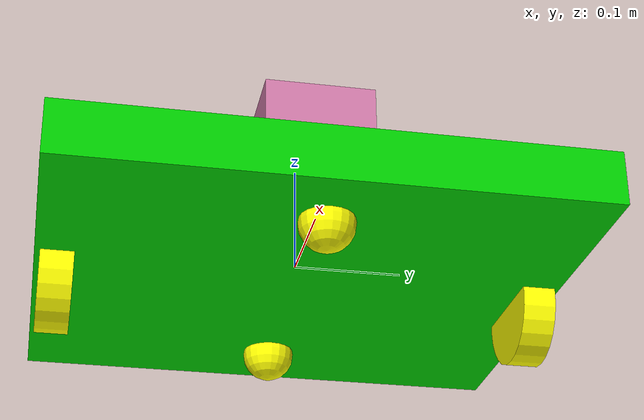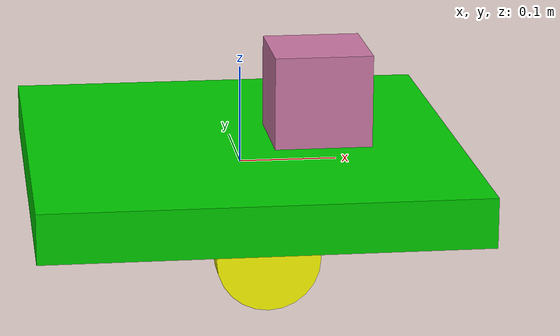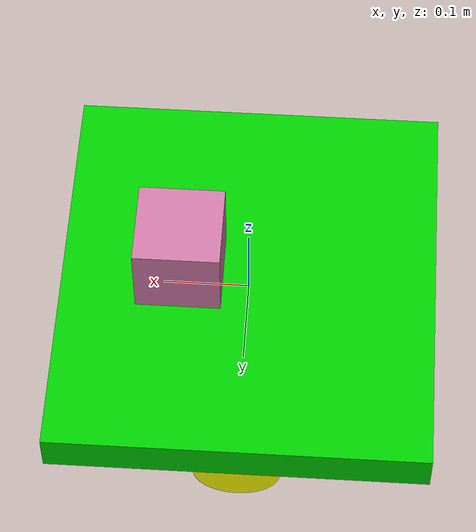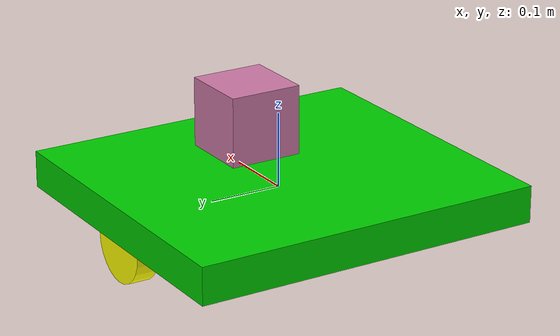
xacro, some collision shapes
<?xml version="1.0"?>
<robot xmlns:xacro="http://www.ros.org/wiki/xacro" name="my_diffbot">

    <xacro:include filename="$(find robot_model)/urdf/robot_core.xacro"/>

    <xacro:include filename="$(find robot_model)/urdf/material_colors.xacro"/>

    <xacro:include filename="$(find robot_model)/urdf/lidar.xacro"/>

</robot>

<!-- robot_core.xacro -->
<robot xmlns:xacro="http://www.ros.org/wiki/xacro" name="my_diffbot">

<!-- Here we define the model parameters -->
    <!-- Geometry -->
    <xacro:property name="base_link_width" value="0.44"/>
    <xacro:property name="base_link_length" value="0.48"/>
    <xacro:property name="base_link_height" value="0.05"/>

    <xacro:property name="wheel_link_length" value="0.03"/>
    <xacro:property name="wheel_link_radius" value="0.05"/>

    <xacro:property name="caster_link_radius" value="0.025"/>

    <!-- Pi Constant -->
    <xacro:property name="PI" value="3.14159265"/>

    <!-- Material density -->

    <!-- Mass -->
    <xacro:property name="base_link_mass" value="10.0"/>
    <xacro:property name="wheel_link_mass" value="0.3"/>
    <xacro:property name="caster_link_mass" value="0.3"/>

<!-- Here we define the model -->
    <!-- DUMMY_LINK is used for Gazebo => Gazebo will complain if missing -->
    <!-- FOR REAL ROBOT, WE DONT NEED "DUMMYLINK" -->

    <!-- Define base_footprint link -->
    <link name="base_footprint">
        <!-- Define visual for base_footprint (optional) -->
        <visual>
            <geometry>
                <!-- You can use any geometry you prefer, simply use a small sphere for visualization -->
                <sphere radius="0.01"/>
            </geometry>
            <origin xyz="0.0 0.0 0.0" rpy="0.0 0.0 0.0"/>
            <material name="blue"/>
        </visual>
        <collision>
            <geometry>
                <!-- Match the visual geometry for collision purposes -->
                <sphere radius="0.01"/>
            </geometry>
            <origin xyz="0.0 0.0 0.0" rpy="0.0 0.0 0.0"/>
        </collision>
    </link>

    <!-- Define a fixed joint connecting base_footprint to base_link -->
    <joint name="base_footprint_joint" type="fixed">
        <parent link="base_footprint"/>
        <child link="base_link"/>
        <origin xyz="0.0 0.0 0.0" rpy="0.0 0.0 0.0"/>
    </joint>

    <!-- Define base_link -->
    <!--Actual body/chassis of the robot-->
    <link name="base_link">
        <visual>
            <geometry>
                <box size="${base_link_width} ${base_link_length} ${base_link_height}"/>
            </geometry>
            <origin xyz="0.0 0.0 0.0" rpy="0.0 0.0 0.0"/>
            <material name="green"/>
        </visual>

        <!-- This is the main factors to simulate the robot's collision (va chamj) -->
        <collision>
            <geometry>
                <box size="${base_link_width} ${base_link_length} ${base_link_height}"/>
            </geometry>
            <origin xyz="0.0 0.0 0.0" rpy="0.0 0.0 0.0"/>
        </collision>

        <inertial>
            <!-- mass in kg -->
            <mass value="${base_link_mass}"/>
            <origin xyz="0.0 0.0 0.0"/>
            <!-- Moment of inertia tensor (Momen quans tinhs)-->
            <inertia ixx="0.1" ixy="0.0" ixz="0.0" iyy="0.1" iyz="0.0" izz="0.1"/>
        </inertial>
    </link>

    <!-- Define left_wheel_joint -->
    <joint name="left_wheel_joint" type="continuous">
        <parent link="base_link"/>
        <child link="left_wheel_link"/>
        <origin xyz="0.0 0.22 -0.03" rpy="-1.57 0.0 0.0"/>
        <axis xyz="0.0 0.0 1.0"/>
    </joint>

    <!-- Define left_wheel_link -->
    <link name="left_wheel_link">
        <visual>
            <geometry>
                <cylinder radius="${wheel_link_radius}" length="${wheel_link_length}"/>
            </geometry>
            <origin xyz="0.0 0.0 0.0" rpy="0 0.0 0.0"/>
            <material name="yellow"/>
        </visual>

        <collision>
            <geometry>
                <cylinder radius="${wheel_link_radius}" length="${wheel_link_length}"/>
            </geometry>
            <origin xyz="0.0 0.0 0.0" rpy="0 0.0 0.0"/>
        </collision>

        <inertial>
            <mass value="${wheel_link_mass}"/>
            <origin xyz="0.0 0.0 0.0"/>
            <inertia ixx="0.1" ixy="0.0" ixz="0.0" iyy="0.1" iyz="0.0" izz="0.1"/>
        </inertial>
    </link>

    <!-- Define right_wheel_joint -->
    <joint name="right_wheel_joint" type="continuous">
        <parent link="base_link"/>
        <child link="right_wheel_link"/>
        <origin xyz="0.0 -0.22 -0.03" rpy="1.57 0.0 0.0"/>
        <axis xyz="0.0 0.0 -1.0"/>
    </joint>

    <!-- Define right_wheel_link -->
    <link name="right_wheel_link">
        <visual>
            <geometry>
                <cylinder radius="${wheel_link_radius}" length="${wheel_link_length}"/>
            </geometry>
            <origin xyz="0.0 0.0 0.0" rpy="0 0.0 0.0"/>
            <material name="yellow"/>
        </visual>

        <collision>
            <geometry>
                <cylinder radius="${wheel_link_radius}" length="${wheel_link_length}"/>
            </geometry>
            <origin xyz="0.0 0.0 0.0" rpy="0 0.0 0.0"/>
        </collision>

        <inertial>
            <mass value="${wheel_link_mass}"/>
            <origin xyz="0.0 0.0 0.0"/>
            <inertia ixx="0.1" ixy="0.0" ixz="0.0" iyy="0.1" iyz="0.0" izz="0.1"/>
        </inertial>
    </link>

    <!-- Define caster_joint_1 -->
    <joint name="caster_joint_1" type="fixed">
        <parent link="base_link"/>
        <child link="caster_link_1"/>
        <origin xyz="0.15 0.0 -0.03"/>
    </joint>

    <!-- Define caster_link_1 -->
    <link name="caster_link_1">
        <visual>
            <geometry>
                <sphere radius="${caster_link_radius}"/>
            </geometry>
            <origin xyz="0.0 0.0 0.0"/>
            <material name="yellow"/>
        </visual>

        <collision>
            <geometry>
                <sphere radius="${caster_link_radius}"/>
            </geometry>
            <origin xyz="0.0 0.0 0.0"/>
        </collision>

        <inertial>
            <mass value="${caster_link_mass}"/>
            <origin xyz="0.0 0.0 0.0"/>
            <inertia ixx="1e-6" ixy="0" ixz="0" iyy="1e-6" iyz="0" izz="1e-6"/>
        </inertial>
    </link>

    <!-- Define caster_joint_2 -->
    <joint name="caster_joint_2" type="fixed">
        <parent link="base_link"/>
        <child link="caster_link_2"/>
        <origin xyz="-0.15 0.0 -0.03"/>
    </joint>

    <!-- Define caster_link_2 -->
    <link name="caster_link_2">
        <visual>
            <geometry>
                <sphere radius="${caster_link_radius}"/>
            </geometry>
            <origin xyz="0.0 0.0 0.0"/>
            <material name="yellow"/>
        </visual>

        <collision>
            <geometry>
                <sphere radius="${caster_link_radius}"/>
            </geometry>
            <origin xyz="0.0 0.0 0.0"/>
        </collision>

        <inertial>
            <mass value="${caster_link_mass}"/>
            <origin xyz="0.0 0.0 0.0"/>
            <inertia ixx="1e-6" ixy="0" ixz="0" iyy="1e-6" iyz="0" izz="1e-6"/>
        </inertial>
    </link>

    <!-- LIDAR -->
    <joint name="lidar_joint" type="fixed">
        <parent link="base_link"/>
        <child link="laser"/>
        <axis xyz="0 1 0" />
        <origin xyz="0.08 0 0.07" rpy="0 0 0"/>
    </joint>

    <link name="laser">
        <visual>
            <geometry>
                <mesh filename="package://robot_model/meshes/Hieuneee.dae"/>
            </geometry>
        </visual>

        <collision>
            <geometry>
                <box size="0.1 0.1 0.1"/>
            </geometry>
            <origin xyz="0 0 0" rpy="0 0 0"/>
        </collision>

        <inertial>
            <mass value="1e-5" />
            <origin xyz="0 0 0" rpy="0 0 0"/>
            <inertia ixx="1e-6" ixy="0" ixz="0" iyy="1e-6" iyz="0" izz="1e-6" />
        </inertial>
    </link>

<!-- USE FOR CONTROLLING ROBOT -->
    <!-- Transmission -->
    <transmission name="trans_left">
        <type>transmission_interface/SimpleTransmission</type>
        <joint name="left_wheel_joint">
            <hardwareInterface>hardware_interface/VelocityJointInterface</hardwareInterface>
        </joint>
        <actuator name="motor_left">
            <hardwareInterface>hardware_interface/VelocityJointInterface</hardwareInterface>
            <mechanicalReduction>1</mechanicalReduction>
        </actuator>
    </transmission>

    <transmission name="trans_right">
        <type>transmission_interface/SimpleTransmission</type>
        <joint name="right_wheel_joint">
            <hardwareInterface>hardware_interface/VelocityJointInterface</hardwareInterface>
        </joint>
        <actuator name="motor_right">
            <hardwareInterface>hardware_interface/VelocityJointInterface</hardwareInterface>
            <mechanicalReduction>1</mechanicalReduction>
        </actuator>
    </transmission>

</robot>

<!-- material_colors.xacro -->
<robot xmlns:xacro="http://www.ros.org/wiki/xacro">

<material name="black">
    <color rgba="0.0 0.0 0.0 1.0"/>
</material>

<material name="blue">
    <color rgba="0.0 0.0 0.8 1.0"/>
</material>

<material name="green">
    <color rgba="0.0 0.8 0.0 1.0"/>
</material>

<material name="grey">
	<color rgba="0.2 0.2 0.2 1.0"/>
</material>

<material name="orange">
    <color rgba="${255/255} ${108/255} ${10/255} 1.0"/>
</material>

<material name="brown">
    <color rgba="${222/255} ${207/255} ${195/255} 1.0"/>
</material>

<material name="red">
    <color rgba="0.8 0.0 0.0 1.0"/>
</material>

<material name="white">
    <color rgba="1.0 1.0 1.0 1.0"/>
</material>

<material name="yellow">
    <color rgba="1.0 1.0 0.0 1.0"/>
</material>

</robot>
